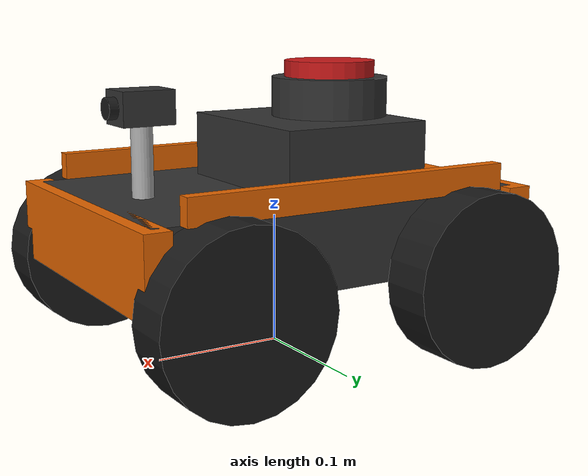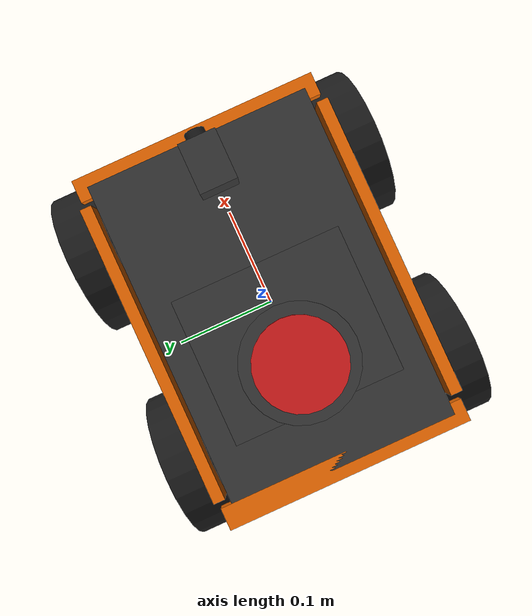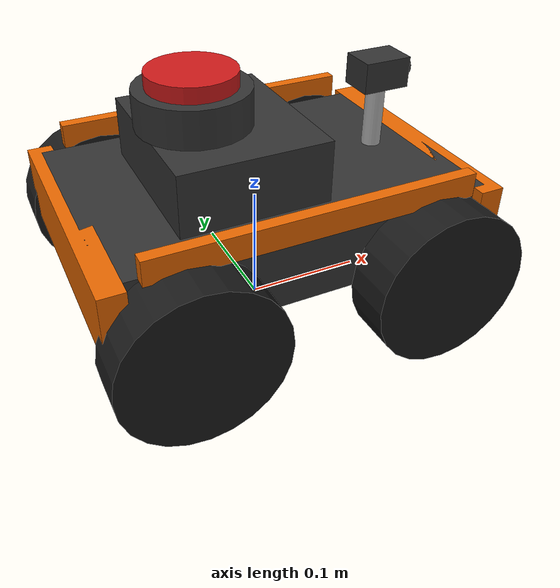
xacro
<?xml version="1.0"?>
<robot xmlns:xacro="http://www.ros.org/wiki/xacro" name="terrain_bot">

  <!-- ── Dimensions ── -->
  <xacro:property name="base_l"   value="0.30"/>
  <xacro:property name="base_w"   value="0.20"/>
  <xacro:property name="base_h"   value="0.06"/>
  <xacro:property name="wheel_r"  value="0.065"/>
  <xacro:property name="wheel_w"  value="0.04"/>
  <xacro:property name="chassis_h" value="0.02"/>

  <!-- ── Materials ── -->
  <material name="dark_gray"><color rgba="0.2 0.2 0.2 1"/></material>
  <material name="orange">   <color rgba="0.9 0.4 0.0 1"/></material>
  <material name="black">    <color rgba="0.1 0.1 0.1 1"/></material>
  <material name="silver">   <color rgba="0.7 0.7 0.7 1"/></material>
  <material name="red">      <color rgba="0.8 0.1 0.1 1"/></material>

  <!-- ══════════════════════════════════════════
       BASE LINK — main chassis plate
  ══════════════════════════════════════════ -->
  <link name="base_footprint"/>
  <joint name="base_footprint_joint" type="fixed">
    <parent link="base_footprint"/>
    <child  link="base_link"/>
    <origin xyz="0 0 ${wheel_r}" rpy="0 0 0"/>
  </joint>

  <link name="base_link">
    <inertial>
      <mass value="5.0"/>
      <origin xyz="0 0 0" rpy="0 0 0"/>
      <inertia ixx="0.08" ixy="0" ixz="0" iyy="0.08" iyz="0" izz="0.08"/>
    </inertial>

    <!-- Main chassis plate -->
    <visual>
      <origin xyz="0 0 ${base_h/2}" rpy="0 0 0"/>
      <geometry><box size="${base_l} ${base_w} ${base_h}"/></geometry>
      <material name="dark_gray"/>
    </visual>
    <collision>
      <origin xyz="0 0 ${base_h/2}" rpy="0 0 0"/>
      <geometry><box size="${base_l} ${base_w} ${base_h}"/></geometry>
    </collision>

    <!-- Front bumper -->
    <visual>
      <origin xyz="${base_l/2} 0 ${base_h/2}" rpy="0 0 0"/>
      <geometry><box size="0.02 ${base_w + 0.02} ${base_h}"/></geometry>
      <material name="orange"/>
    </visual>

    <!-- Rear bumper -->
    <visual>
      <origin xyz="${-base_l/2} 0 ${base_h/2}" rpy="0 0 0"/>
      <geometry><box size="0.02 ${base_w + 0.02} ${base_h}"/></geometry>
      <material name="orange"/>
    </visual>

    <!-- Left side rail -->
    <visual>
      <origin xyz="0 ${base_w/2 + 0.005} ${base_h + 0.01}" rpy="0 0 0"/>
      <geometry><box size="${base_l - 0.04} 0.01 0.02"/></geometry>
      <material name="orange"/>
    </visual>

    <!-- Right side rail -->
    <visual>
      <origin xyz="0 ${-base_w/2 - 0.005} ${base_h + 0.01}" rpy="0 0 0"/>
      <geometry><box size="${base_l - 0.04} 0.01 0.02"/></geometry>
      <material name="orange"/>
    </visual>

    <!-- Electronics box on top -->
    <visual>
      <origin xyz="-0.03 0 ${base_h + 0.025}" rpy="0 0 0"/>
      <geometry><box size="0.12 0.14 0.05"/></geometry>
      <material name="dark_gray"/>
    </visual>

  </link>

  <!-- ══════════════════════════════════════════
       WHEEL MACRO — rim + tyre look
  ══════════════════════════════════════════ -->
  <xacro:macro name="wheel" params="name x y reflect">
    <link name="${name}_link">
      <inertial>
        <mass value="0.5"/>
        <origin xyz="0 0 0" rpy="0 0 0"/>
        <inertia ixx="0.001" ixy="0" ixz="0" iyy="0.001" iyz="0" izz="0.001"/>
      </inertial>

      <!-- Outer tyre -->
      <visual>
        <origin xyz="0 0 0" rpy="1.5708 0 0"/>
        <geometry><cylinder radius="${wheel_r}" length="${wheel_w}"/></geometry>
        <material name="black"/>
      </visual>

      <!-- Inner rim -->
      <visual>
        <origin xyz="0 ${reflect * 0.005} 0" rpy="1.5708 0 0"/>
        <geometry><cylinder radius="${wheel_r * 0.6}" length="${wheel_w * 0.6}"/></geometry>
        <material name="silver"/>
      </visual>

      <!-- Hub centre -->
      <visual>
        <origin xyz="0 ${reflect * 0.01} 0" rpy="1.5708 0 0"/>
        <geometry><cylinder radius="${wheel_r * 0.15}" length="${wheel_w * 0.3}"/></geometry>
        <material name="dark_gray"/>
      </visual>

      <collision>
        <origin xyz="0 0 0" rpy="1.5708 0 0"/>
        <geometry><cylinder radius="${wheel_r}" length="${wheel_w}"/></geometry>
      </collision>
    </link>

    <joint name="${name}_joint" type="continuous">
      <parent link="base_link"/>
      <child  link="${name}_link"/>
      <origin xyz="${x} ${y} 0" rpy="0 0 0"/>
      <axis xyz="0 1 0"/>
      <dynamics damping="0.1" friction="0.1"/>
    </joint>
  </xacro:macro>

  <xacro:wheel name="wheel_fl" x="${base_l/2 - 0.05}"  y="${base_w/2 + wheel_w/2}"  reflect="1"/>
  <xacro:wheel name="wheel_fr" x="${base_l/2 - 0.05}"  y="${-(base_w/2 + wheel_w/2)}" reflect="-1"/>
  <xacro:wheel name="wheel_rl" x="${-(base_l/2 - 0.05)}" y="${base_w/2 + wheel_w/2}"  reflect="1"/>
  <xacro:wheel name="wheel_rr" x="${-(base_l/2 - 0.05)}" y="${-(base_w/2 + wheel_w/2)}" reflect="-1"/>

  <!-- ══════════════════════════════════════════
       IMU LINK
  ══════════════════════════════════════════ -->
  <link name="imu_link"/>
  <joint name="imu_joint" type="fixed">
    <parent link="base_link"/>
    <child  link="imu_link"/>
    <origin xyz="0 0 ${base_h}" rpy="0 0 0"/>
  </joint>

  <!-- ══════════════════════════════════════════
       CAMERA MOUNT
  ══════════════════════════════════════════ -->
  <link name="camera_mount_link">
    <inertial>
      <mass value="0.05"/>
      <origin xyz="0 0 0" rpy="0 0 0"/>
      <inertia ixx="0.0001" ixy="0" ixz="0" iyy="0.0001" iyz="0" izz="0.0001"/>
    </inertial>
    <!-- Mount pole -->
    <visual>
      <origin xyz="0 0 0.03" rpy="0 0 0"/>
      <geometry><cylinder radius="0.008" length="0.06"/></geometry>
      <material name="silver"/>
    </visual>
    <!-- Camera body -->
    <visual>
      <origin xyz="0 0 0.065" rpy="0 0 0"/>
      <geometry><box size="0.04 0.03 0.025"/></geometry>
      <material name="dark_gray"/>
    </visual>
    <!-- Camera lens -->
    <visual>
      <origin xyz="0.022 0 0.065" rpy="0 1.5708 0"/>
      <geometry><cylinder radius="0.008" length="0.01"/></geometry>
      <material name="black"/>
    </visual>
    <collision>
      <origin xyz="0 0 0.04" rpy="0 0 0"/>
      <geometry><box size="0.05 0.04 0.08"/></geometry>
    </collision>
  </link>
  <joint name="camera_mount_joint" type="fixed">
    <parent link="base_link"/>
    <child  link="camera_mount_link"/>
    <origin xyz="${base_l/2 - 0.04} 0 ${base_h}" rpy="0 0 0"/>
  </joint>

  <!-- ══════════════════════════════════════════
       LIDAR LINK
  ══════════════════════════════════════════ -->
  <link name="lidar_link">
    <inertial>
      <mass value="0.1"/>
      <origin xyz="0 0 0" rpy="0 0 0"/>
      <inertia ixx="0.0001" ixy="0" ixz="0" iyy="0.0001" iyz="0" izz="0.0001"/>
    </inertial>
    <!-- LiDAR base -->
    <visual>
      <origin xyz="0 0 0.015" rpy="0 0 0"/>
      <geometry><cylinder radius="0.045" length="0.03"/></geometry>
      <material name="dark_gray"/>
    </visual>
    <!-- LiDAR top dome -->
    <visual>
      <origin xyz="0 0 0.035" rpy="0 0 0"/>
      <geometry><cylinder radius="0.035" length="0.015"/></geometry>
      <material name="red"/>
    </visual>
    <collision>
      <origin xyz="0 0 0.02" rpy="0 0 0"/>
      <geometry><cylinder radius="0.045" length="0.04"/></geometry>
    </collision>
  </link>
  <joint name="lidar_joint" type="fixed">
    <parent link="base_link"/>
    <child  link="lidar_link"/>
    <origin xyz="-0.05 0 ${base_h + 0.05}" rpy="0 0 0"/>
  </joint>

  <!-- ══════════════════════════════════════════
       GAZEBO — CAMERA SENSOR
  ══════════════════════════════════════════ -->
  <gazebo reference="camera_mount_link">
    <sensor name="front_camera" type="camera">
      <always_on>true</always_on>
      <update_rate>10</update_rate>
      <topic>camera/image_raw</topic>
      <gz_frame_id>camera_mount_link</gz_frame_id>
      <camera>
        <horizontal_fov>1.047</horizontal_fov>
        <image>
          <width>640</width>
          <height>480</height>
          <format>RGB_INT8</format>
        </image>
        <clip>
          <near>0.05</near>
          <far>20.0</far>
        </clip>
        <noise>
          <type>gaussian</type>
          <mean>0.0</mean>
          <stddev>0.007</stddev>
        </noise>
      </camera>
    </sensor>
  </gazebo>

  <!-- ══════════════════════════════════════════
       GAZEBO — DIFF DRIVE
  ══════════════════════════════════════════ -->
  <gazebo>
    <plugin filename="libignition-gazebo-diff-drive-system.so"
            name="ignition::gazebo::systems::DiffDrive">
      <left_joint>wheel_fl_joint</left_joint>
      <left_joint>wheel_rl_joint</left_joint>
      <right_joint>wheel_fr_joint</right_joint>
      <right_joint>wheel_rr_joint</right_joint>
      <wheel_separation>${base_w + wheel_w}</wheel_separation>
      <wheel_radius>${wheel_r}</wheel_radius>
      <odom_publish_frequency>50</odom_publish_frequency>
      <topic>cmd_vel</topic>
      <odom_topic>odom</odom_topic>
      <frame_id>odom</frame_id>
      <child_frame_id>base_link</child_frame_id>
    </plugin>
  </gazebo>

<gazebo reference="imu_link">
  <sensor name="icm20948_imu" type="imu">
    <always_on>true</always_on>
    <update_rate>100</update_rate>
    <topic>imu/data</topic>
    <imu>
      <angular_velocity>
        <x>
          <noise type="gaussian">
            <mean>0.0</mean>
            <stddev>0.00261</stddev>
            <bias_mean>0.0001</bias_mean>
            <bias_stddev>0.00001</bias_stddev>
          </noise>
        </x>
        <y>
          <noise type="gaussian">
            <mean>0.0</mean>
            <stddev>0.00261</stddev>
            <bias_mean>0.0001</bias_mean>
            <bias_stddev>0.00001</bias_stddev>
          </noise>
        </y>
        <z>
          <noise type="gaussian">
            <mean>0.0</mean>
            <stddev>0.00261</stddev>
            <bias_mean>0.0001</bias_mean>
            <bias_stddev>0.00001</bias_stddev>
          </noise>
        </z>
      </angular_velocity>
      <linear_acceleration>
        <x>
          <noise type="gaussian">
            <mean>0.0</mean>
            <stddev>0.000230</stddev>
            <bias_mean>0.001</bias_mean>
            <bias_stddev>0.0001</bias_stddev>
          </noise>
        </x>
        <y>
          <noise type="gaussian">
            <mean>0.0</mean>
            <stddev>0.000230</stddev>
            <bias_mean>0.001</bias_mean>
            <bias_stddev>0.0001</bias_stddev>
          </noise>
        </y>
        <z>
          <noise type="gaussian">
            <mean>0.0</mean>
            <stddev>0.000230</stddev>
            <bias_mean>0.001</bias_mean>
            <bias_stddev>0.0001</bias_stddev>
          </noise>
        </z>
      </linear_acceleration>
    </imu>
  </sensor>
</gazebo>

  <!-- ══════════════════════════════════════════
       GAZEBO — 2D LIDAR
  ══════════════════════════════════════════ -->
  <gazebo reference="lidar_link">
    <sensor name="lidar" type="gpu_lidar">
      <pose>0 0 0 0 0 0</pose>
      <always_on>true</always_on>
      <visualize>true</visualize>
      <update_rate>10</update_rate>
      <topic>scan</topic>
      <gz_frame_id>lidar_link</gz_frame_id>
      <lidar>
        <scan>
          <horizontal>
            <samples>360</samples>
            <resolution>1</resolution>
            <min_angle>-3.14159</min_angle>
            <max_angle>3.14159</max_angle>
          </horizontal>
          <vertical>
            <samples>1</samples>
            <resolution>1</resolution>
            <min_angle>0</min_angle>
            <max_angle>0</max_angle>
          </vertical>
        </scan>
        <range>
          <min>0.12</min>
          <max>10.0</max>
          <resolution>0.01</resolution>
        </range>
        <noise>
          <type>gaussian</type>
          <mean>0</mean>
          <stddev>0.01</stddev>
        </noise>
      </lidar>
    </sensor>
  </gazebo>

</robot>
